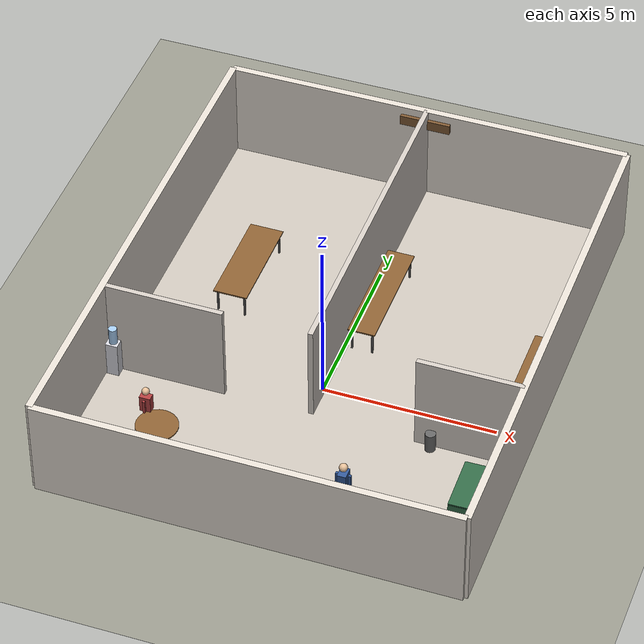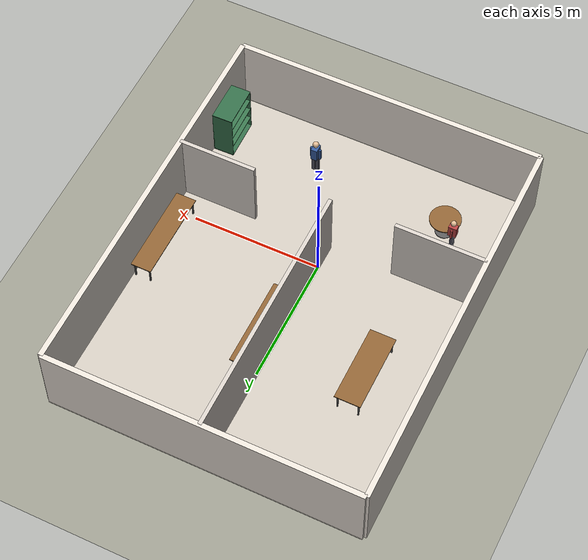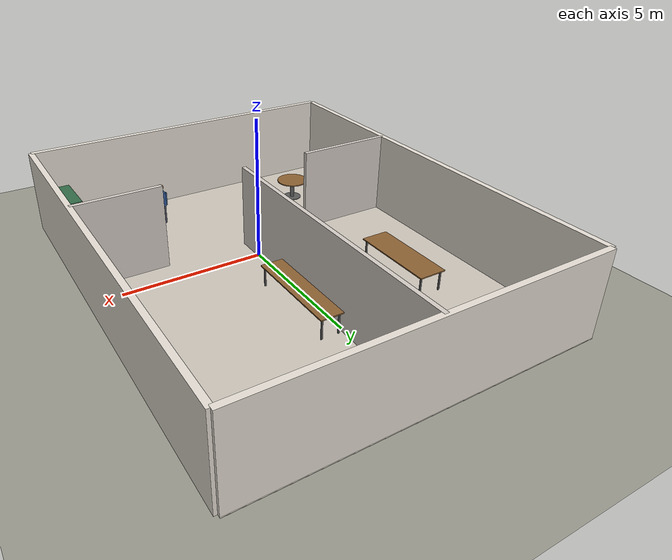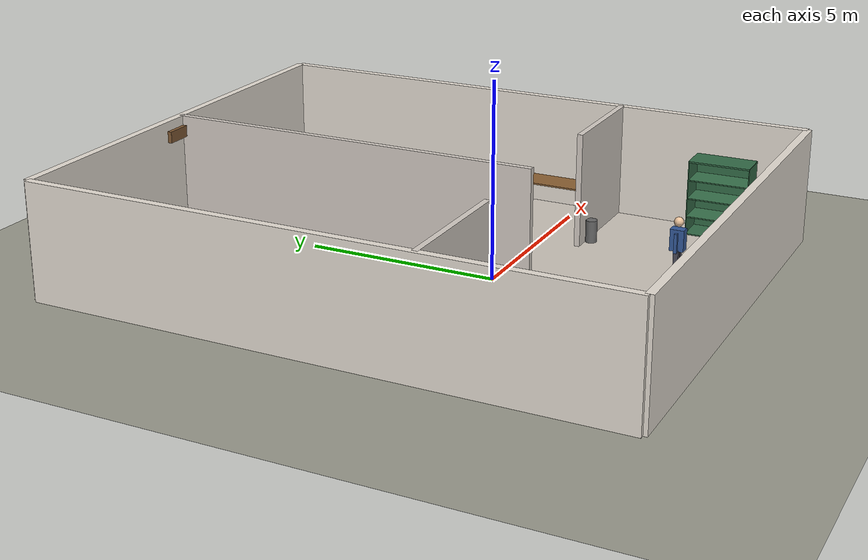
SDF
<?xml version="1.0"?>
<sdf version="1.8">
  <world name="default">
    <physics type="ode">
      <real_time_update_rate>1000.0</real_time_update_rate>
      <max_step_size>0.001</max_step_size>
      <real_time_factor>1</real_time_factor>
      <ode>
        <solver>
          <type>quick</type>
          <iters>150</iters>
          <precon_iters>0</precon_iters>
          <sor>1.400000</sor>
          <use_dynamic_moi_rescaling>1</use_dynamic_moi_rescaling>
        </solver>
        <constraints>
          <cfm>0.00001</cfm>
          <erp>0.2</erp>
          <contact_max_correcting_vel>2000.000000</contact_max_correcting_vel>
          <contact_surface_layer>0.01000</contact_surface_layer>
        </constraints>
      </ode>
    </physics>
    <plugin filename="gz-sim-physics-system" name="gz::sim::systems::Physics"/>
    <plugin filename="gz-sim-user-commands-system" name="gz::sim::systems::UserCommands"/>
    <plugin filename="gz-sim-scene-broadcaster-system" name="gz::sim::systems::SceneBroadcaster"/>
    <plugin filename="gz-sim-sensors-system" name="gz::sim::systems::Sensors">
      <render_engine>ogre2</render_engine>
    </plugin>
    <plugin filename="gz-sim-imu-system" name="gz::sim::systems::Imu"/>

    <!-- Lighting -->
    <light type="directional" name="sun">
      <cast_shadows>true</cast_shadows>
      <pose>0 0 10 0 0 0</pose>
      <diffuse>0.95 0.95 0.9 1</diffuse>
      <specular>0.3 0.3 0.3 1</specular>
      <direction>-0.5 0.3 -0.9</direction>
    </light>

    <!-- Ground Plane -->
    <model name="ground_plane">
      <static>true</static>
      <link name="link">
        <collision name="collision">
          <geometry><plane><normal>0 0 1</normal><size>20 20</size></plane></geometry>
        </collision>
        <visual name="visual">
          <geometry><plane><normal>0 0 1</normal><size>20 20</size></plane></geometry>
          <material>
            <ambient>0.55 0.55 0.5 1</ambient>
            <diffuse>0.6 0.6 0.55 1</diffuse>
          </material>
        </visual>
      </link>
    </model>

    <!-- Floor Tiles -->
    <model name="floor_tiles">
      <static>true</static>
      <pose>0 1.62 0.005 0 0 0</pose>
      <link name="link">
        <visual name="visual">
          <geometry><box><size>12 15 0.01</size></box></geometry>
          <material>
            <ambient>0.75 0.72 0.68 1</ambient>
            <diffuse>0.8 0.77 0.73 1</diffuse>
          </material>
        </visual>
      </link>
    </model>

    <!-- =================== WALLS ===================== -->
    <model name="wall_north">
      <static>true</static>
      <pose>0 9 1.5 0 0 0</pose>
      <link name="link">
        <collision name="collision"><geometry><box><size>12 0.2 3.0</size></box></geometry></collision>
        <visual name="visual">
          <geometry><box><size>12 0.2 3.0</size></box></geometry>
          <material><ambient>0.85 0.82 0.78 1</ambient><diffuse>0.9 0.87 0.83 1</diffuse></material>
        </visual>
      </link>
    </model>

    <model name="wall_south">
      <static>true</static>
      <pose>0 -6 1.5 0 0 0</pose>
      <link name="link">
        <collision name="collision"><geometry><box><size>12 0.2 3.0</size></box></geometry></collision>
        <visual name="visual">
          <geometry><box><size>12 0.2 3.0</size></box></geometry>
          <material><ambient>0.85 0.82 0.78 1</ambient><diffuse>0.9 0.87 0.83 1</diffuse></material>
        </visual>
      </link>
    </model>

    <model name="wall_west">
      <static>true</static>
      <pose>-6 1.5 1.5 0 0 0</pose>
      <link name="link">
        <collision name="collision"><geometry><box><size>0.2 15 3.0</size></box></geometry></collision>
        <visual name="visual">
          <geometry><box><size>0.2 15 3.0</size></box></geometry>
          <material><ambient>0.85 0.82 0.78 1</ambient><diffuse>0.9 0.87 0.83 1</diffuse></material>
        </visual>
      </link>
    </model>

    <model name="wall_east">
      <static>true</static>
      <pose>6 1.5 1.5 0 0 0</pose>
      <link name="link">
        <collision name="collision"><geometry><box><size>0.2 15 3.0</size></box></geometry></collision>
        <visual name="visual">
          <geometry><box><size>0.2 15 3.0</size></box></geometry>
          <material><ambient>0.85 0.82 0.78 1</ambient><diffuse>0.9 0.87 0.83 1</diffuse></material>
        </visual>
      </link>
    </model>

    <!-- Interior wall - Vertical partition -->
    <model name="wall_partition_vertical">
      <static>true</static>
      <pose>0 4 1.5 0 0 0</pose>
      <link name="link">
        <collision name="collision"><geometry><box><size>0.15 10.0 3.0</size></box></geometry></collision>
        <visual name="visual">
          <geometry><box><size>0.15 10.0 3.0</size></box></geometry>
          <material><ambient>0.78 0.75 0.72 1</ambient><diffuse>0.83 0.80 0.77 1</diffuse></material>
        </visual>
      </link>
    </model>

    <!-- Interior wall - Horizontal left -->
    <model name="wall_horizontal_left">
      <static>true</static>
      <pose>-4.25 -1 1.5 0 0 0</pose>
      <link name="link">
        <collision name="collision"><geometry><box><size>3.5 0.15 3.0</size></box></geometry></collision>
        <visual name="visual">
          <geometry><box><size>3.5 0.15 3.0</size></box></geometry>
          <material><ambient>0.78 0.75 0.72 1</ambient><diffuse>0.83 0.80 0.77 1</diffuse></material>
        </visual>
      </link>
    </model>

    <!-- Interior wall - Horizontal right -->
    <model name="wall_horizontal_right">
      <static>true</static>
      <pose>4.5 -1 1.5 0 0 0</pose>
      <link name="link">
        <collision name="collision"><geometry><box><size>3.0 0.15 3.0</size></box></geometry></collision>
        <visual name="visual">
          <geometry><box><size>3.0 0.15 3.0</size></box></geometry>
          <material><ambient>0.78 0.75 0.72 1</ambient><diffuse>0.83 0.80 0.77 1</diffuse></material>
        </visual>
      </link>
    </model>

    <!-- Door frame -->
    <model name="door_frame_left">
      <static>true</static>
      <pose>0 8.9 2.6 0 0 0</pose>
      <link name="link">
        <visual name="visual">
          <geometry><box><size>1.5 0.22 0.3</size></box></geometry>
          <material><ambient>0.45 0.3 0.15 1</ambient><diffuse>0.5 0.35 0.2 1</diffuse></material>
        </visual>
      </link>
    </model>

    <!-- =================== FURNITURE ===================== -->

    <!-- Table 1 (upper left) -->
    <model name="table_1">
      <static>true</static>
      <pose>-3.5 3.5 0 0 0 -1.5708</pose>
      <link name="link">
        <visual name="top"><pose>0 0 0.75 0 0 0</pose>
          <geometry><box><size>3.0 1.0 0.04</size></box></geometry>
          <material><ambient>0.45 0.3 0.15 1</ambient><diffuse>0.55 0.38 0.2 1</diffuse></material>
        </visual>
        <collision name="top_col"><pose>0 0 0.75 0 0 0</pose><geometry><box><size>3.0 1.0 0.04</size></box></geometry></collision>
        <visual name="leg1"><pose>-1.4 -0.4 0.375 0 0 0</pose><geometry><box><size>0.05 0.05 0.75</size></box></geometry>
          <material><ambient>0.3 0.3 0.3 1</ambient><diffuse>0.35 0.35 0.35 1</diffuse></material></visual>
        <collision name="leg1_col"><pose>-1.4 -0.4 0.375 0 0 0</pose><geometry><box><size>0.05 0.05 0.75</size></box></geometry></collision>
        <visual name="leg2"><pose>1.4 -0.4 0.375 0 0 0</pose><geometry><box><size>0.05 0.05 0.75</size></box></geometry>
          <material><ambient>0.3 0.3 0.3 1</ambient><diffuse>0.35 0.35 0.35 1</diffuse></material></visual>
        <collision name="leg2_col"><pose>1.4 -0.4 0.375 0 0 0</pose><geometry><box><size>0.05 0.05 0.75</size></box></geometry></collision>
        <visual name="leg3"><pose>-1.4 0.4 0.375 0 0 0</pose><geometry><box><size>0.05 0.05 0.75</size></box></geometry>
          <material><ambient>0.3 0.3 0.3 1</ambient><diffuse>0.35 0.35 0.35 1</diffuse></material></visual>
        <collision name="leg3_col"><pose>-1.4 0.4 0.375 0 0 0</pose><geometry><box><size>0.05 0.05 0.75</size></box></geometry></collision>
        <visual name="leg4"><pose>1.4 0.4 0.375 0 0 0</pose><geometry><box><size>0.05 0.05 0.75</size></box></geometry>
          <material><ambient>0.3 0.3 0.3 1</ambient><diffuse>0.35 0.35 0.35 1</diffuse></material></visual>
        <collision name="leg4_col"><pose>1.4 0.4 0.375 0 0 0</pose><geometry><box><size>0.05 0.05 0.75</size></box></geometry></collision>
      </link>
    </model>

    <!-- Table 2 (right side) -->
    <model name="table_2">
      <static>true</static>
      <pose>5.5 1.5 0 0 0 1.57</pose>
      <link name="link">
        <visual name="top"><pose>0 0 0.75 0 0 0</pose>
          <geometry><box><size>3.5 0.8 0.04</size></box></geometry>
          <material><ambient>0.45 0.3 0.15 1</ambient><diffuse>0.55 0.38 0.2 1</diffuse></material>
        </visual>
        <collision name="top_col"><pose>0 0 0.75 0 0 0</pose><geometry><box><size>3.5 0.8 0.04</size></box></geometry></collision>
        <visual name="leg1"><pose>-1.65 -0.3 0.375 0 0 0</pose><geometry><box><size>0.05 0.05 0.75</size></box></geometry>
          <material><ambient>0.3 0.3 0.3 1</ambient><diffuse>0.35 0.35 0.35 1</diffuse></material></visual>
        <visual name="leg2"><pose>1.65 -0.3 0.375 0 0 0</pose><geometry><box><size>0.05 0.05 0.75</size></box></geometry>
          <material><ambient>0.3 0.3 0.3 1</ambient><diffuse>0.35 0.35 0.35 1</diffuse></material></visual>
        <visual name="leg3"><pose>-1.65 0.3 0.375 0 0 0</pose><geometry><box><size>0.05 0.05 0.75</size></box></geometry>
          <material><ambient>0.3 0.3 0.3 1</ambient><diffuse>0.35 0.35 0.35 1</diffuse></material></visual>
        <visual name="leg4"><pose>1.65 0.3 0.375 0 0 0</pose><geometry><box><size>0.05 0.05 0.75</size></box></geometry>
          <material><ambient>0.3 0.3 0.3 1</ambient><diffuse>0.35 0.35 0.35 1</diffuse></material></visual>
      </link>
    </model>

    <!-- Table 3 (center) -->
    <model name="table_3">
      <static>true</static>
      <pose>0.5 3.5 0 0 0 1.57</pose>
      <link name="link">
        <visual name="top"><pose>0 0 0.75 0 0 0</pose>
          <geometry><box><size>3.5 0.8 0.04</size></box></geometry>
          <material><ambient>0.45 0.3 0.15 1</ambient><diffuse>0.55 0.38 0.2 1</diffuse></material>
        </visual>
        <collision name="top_col"><pose>0 0 0.75 0 0 0</pose><geometry><box><size>3.5 0.8 0.04</size></box></geometry></collision>
        <visual name="leg1"><pose>-1.65 -0.3 0.375 0 0 0</pose><geometry><box><size>0.05 0.05 0.75</size></box></geometry>
          <material><ambient>0.3 0.3 0.3 1</ambient><diffuse>0.35 0.35 0.35 1</diffuse></material></visual>
        <visual name="leg2"><pose>1.65 -0.3 0.375 0 0 0</pose><geometry><box><size>0.05 0.05 0.75</size></box></geometry>
          <material><ambient>0.3 0.3 0.3 1</ambient><diffuse>0.35 0.35 0.35 1</diffuse></material></visual>
        <visual name="leg3"><pose>-1.65 0.3 0.375 0 0 0</pose><geometry><box><size>0.05 0.05 0.75</size></box></geometry>
          <material><ambient>0.3 0.3 0.3 1</ambient><diffuse>0.35 0.35 0.35 1</diffuse></material></visual>
        <visual name="leg4"><pose>1.65 0.3 0.375 0 0 0</pose><geometry><box><size>0.05 0.05 0.75</size></box></geometry>
          <material><ambient>0.3 0.3 0.3 1</ambient><diffuse>0.35 0.35 0.35 1</diffuse></material></visual>
      </link>
    </model>

    <!-- Round table (lower left) -->
    <model name="round_table">
      <static>true</static>
      <pose>-3.5 -3.5 0 0 0 0</pose>
      <link name="link">
        <visual name="top"><pose>0 0 0.75 0 0 0</pose>
          <geometry><cylinder><radius>0.6</radius><length>0.04</length></cylinder></geometry>
          <material><ambient>0.45 0.3 0.15 1</ambient><diffuse>0.55 0.38 0.2 1</diffuse></material>
        </visual>
        <collision name="top_col"><pose>0 0 0.75 0 0 0</pose>
          <geometry><cylinder><radius>0.6</radius><length>0.04</length></cylinder></geometry>
        </collision>
        <visual name="pedestal"><pose>0 0 0.375 0 0 0</pose>
          <geometry><cylinder><radius>0.08</radius><length>0.75</length></cylinder></geometry>
          <material><ambient>0.3 0.3 0.3 1</ambient><diffuse>0.35 0.35 0.35 1</diffuse></material>
        </visual>
        <collision name="pedestal_col"><pose>0 0 0.375 0 0 0</pose>
          <geometry><cylinder><radius>0.08</radius><length>0.75</length></cylinder></geometry>
        </collision>
        <visual name="base"><pose>0 0 0.02 0 0 0</pose>
          <geometry><cylinder><radius>0.35</radius><length>0.04</length></cylinder></geometry>
          <material><ambient>0.3 0.3 0.3 1</ambient><diffuse>0.35 0.35 0.35 1</diffuse></material>
        </visual>
      </link>
    </model>

    <!-- Shelf cabinet (lower right) -->
    <model name="shelf_cabinet">
      <static>true</static>
      <pose>5.5 -4.0 0 0 0 -1.55</pose>
      <link name="link">
        <visual name="back_panel"><pose>0 0.39 1.0 0 0 0</pose>
          <geometry><box><size>1.6 0.02 2.0</size></box></geometry>
          <material><ambient>0.15 0.35 0.2 1</ambient><diffuse>0.2 0.42 0.28 1</diffuse></material>
        </visual>
        <collision name="back_col"><pose>0 0.39 1.0 0 0 0</pose><geometry><box><size>1.6 0.02 2.0</size></box></geometry></collision>
        <visual name="left_side"><pose>-0.79 0 1.0 0 0 0</pose>
          <geometry><box><size>0.02 0.8 2.0</size></box></geometry>
          <material><ambient>0.15 0.35 0.2 1</ambient><diffuse>0.2 0.42 0.28 1</diffuse></material>
        </visual>
        <collision name="left_col"><pose>-0.79 0 1.0 0 0 0</pose><geometry><box><size>0.02 0.8 2.0</size></box></geometry></collision>
        <visual name="right_side"><pose>0.79 0 1.0 0 0 0</pose>
          <geometry><box><size>0.02 0.8 2.0</size></box></geometry>
          <material><ambient>0.15 0.35 0.2 1</ambient><diffuse>0.2 0.42 0.28 1</diffuse></material>
        </visual>
        <collision name="right_col"><pose>0.79 0 1.0 0 0 0</pose><geometry><box><size>0.02 0.8 2.0</size></box></geometry></collision>
        <visual name="shelf_bottom"><pose>0 0 0.02 0 0 0</pose>
          <geometry><box><size>1.6 0.8 0.04</size></box></geometry>
          <material><ambient>0.15 0.35 0.2 1</ambient><diffuse>0.2 0.42 0.28 1</diffuse></material>
        </visual>
        <visual name="shelf_1"><pose>0 0 0.5 0 0 0</pose>
          <geometry><box><size>1.56 0.78 0.03</size></box></geometry>
          <material><ambient>0.18 0.38 0.23 1</ambient><diffuse>0.22 0.45 0.3 1</diffuse></material>
        </visual>
        <collision name="s1_col"><pose>0 0 0.5 0 0 0</pose><geometry><box><size>1.56 0.78 0.03</size></box></geometry></collision>
        <visual name="shelf_2"><pose>0 0 1.0 0 0 0</pose>
          <geometry><box><size>1.56 0.78 0.03</size></box></geometry>
          <material><ambient>0.18 0.38 0.23 1</ambient><diffuse>0.22 0.45 0.3 1</diffuse></material>
        </visual>
        <collision name="s2_col"><pose>0 0 1.0 0 0 0</pose><geometry><box><size>1.56 0.78 0.03</size></box></geometry></collision>
        <visual name="shelf_3"><pose>0 0 1.5 0 0 0</pose>
          <geometry><box><size>1.56 0.78 0.03</size></box></geometry>
          <material><ambient>0.18 0.38 0.23 1</ambient><diffuse>0.22 0.45 0.3 1</diffuse></material>
        </visual>
        <collision name="s3_col"><pose>0 0 1.5 0 0 0</pose><geometry><box><size>1.56 0.78 0.03</size></box></geometry></collision>
        <visual name="shelf_top"><pose>0 0 2.0 0 0 0</pose>
          <geometry><box><size>1.6 0.8 0.04</size></box></geometry>
          <material><ambient>0.15 0.35 0.2 1</ambient><diffuse>0.2 0.42 0.28 1</diffuse></material>
        </visual>
      </link>
    </model>

    <!-- Trash bin -->
    <model name="trash_bin">
      <static>true</static>
      <pose>3.5 -1.2 0 0 0 0</pose>
      <link name="link">
        <visual name="body"><pose>0 0 0.3 0 0 0</pose>
          <geometry><cylinder><radius>0.15</radius><length>0.6</length></cylinder></geometry>
          <material><ambient>0.3 0.3 0.3 1</ambient><diffuse>0.4 0.4 0.4 1</diffuse></material>
        </visual>
        <collision name="col"><pose>0 0 0.3 0 0 0</pose>
          <geometry><cylinder><radius>0.15</radius><length>0.6</length></cylinder></geometry>
        </collision>
      </link>
    </model>

    <!-- Water dispenser -->
    <model name="water_dispenser">
      <static>true</static>
      <pose>-5.7 -1.2 0 0 0 0</pose>
      <link name="link">
        <visual name="body"><pose>0 0 0.55 0 0 0</pose>
          <geometry><box><size>0.35 0.35 1.1</size></box></geometry>
          <material><ambient>0.8 0.8 0.82 1</ambient><diffuse>0.85 0.85 0.88 1</diffuse></material>
        </visual>
        <collision name="col"><pose>0 0 0.55 0 0 0</pose>
          <geometry><box><size>0.35 0.35 1.1</size></box></geometry>
        </collision>
        <visual name="bottle"><pose>0 0 1.35 0 0 0</pose>
          <geometry><cylinder><radius>0.12</radius><length>0.5</length></cylinder></geometry>
          <material><ambient>0.6 0.75 0.9 1</ambient><diffuse>0.65 0.8 0.95 1</diffuse></material>
        </visual>
      </link>
    </model>

    <!-- Walking person 1 -->
    <model name="orang_jalan_1">
      <static>false</static>
      <self_collide>false</self_collide>
      <pose>2 -4 0 0 0 1.5708</pose>
      <link name="body">
        <inertial>
          <pose>0 0 0.4 0 0 0</pose>
          <mass>1.0</mass>
          <inertia><ixx>0.5</ixx><ixy>0</ixy><ixz>0</ixz><iyy>0.5</iyy><iyz>0</iyz><izz>0.16</izz></inertia>
        </inertial>
        <collision name="base_col"><pose>0 0 0.85 0 0 0</pose>
          <geometry><cylinder><radius>0.25</radius><length>1.7</length></cylinder></geometry>
          <surface><friction><ode><mu>0.1</mu><mu2>0.1</mu2></ode></friction></surface>
        </collision>
        <visual name="torso"><pose>0 0 1.05 0 0 0</pose>
          <geometry><box><size>0.35 0.25 0.55</size></box></geometry>
          <material><ambient>0.15 0.3 0.55 1</ambient><diffuse>0.2 0.35 0.6 1</diffuse></material>
        </visual>
        <visual name="head"><pose>0 0 1.5 0 0 0</pose>
          <geometry><sphere><radius>0.12</radius></sphere></geometry>
          <material><ambient>0.85 0.7 0.55 1</ambient><diffuse>0.9 0.75 0.6 1</diffuse></material>
        </visual>
        <visual name="arm_left"><pose>0 0.18 1.0 0 0 0</pose>
          <geometry><box><size>0.08 0.08 0.5</size></box></geometry>
          <material><ambient>0.15 0.3 0.55 1</ambient><diffuse>0.2 0.35 0.6 1</diffuse></material>
        </visual>
        <visual name="arm_right"><pose>0 -0.18 1.0 0 0 0</pose>
          <geometry><box><size>0.08 0.08 0.5</size></box></geometry>
          <material><ambient>0.15 0.3 0.55 1</ambient><diffuse>0.2 0.35 0.6 1</diffuse></material>
        </visual>
        <visual name="leg_left"><pose>0 0.08 0.4 0 0 0</pose>
          <geometry><box><size>0.12 0.12 0.8</size></box></geometry>
          <material><ambient>0.25 0.25 0.3 1</ambient><diffuse>0.3 0.3 0.35 1</diffuse></material>
        </visual>
        <visual name="leg_right"><pose>0 -0.08 0.4 0 0 0</pose>
          <geometry><box><size>0.12 0.12 0.8</size></box></geometry>
          <material><ambient>0.25 0.25 0.3 1</ambient><diffuse>0.3 0.3 0.35 1</diffuse></material>
        </visual>
      </link>
      <plugin filename="gz-sim-trajectory-follower-system" name="gz::sim::systems::TrajectoryFollower">
        <link_name>body</link_name><loop>true</loop><force>10</force><torque>10</torque>
        <line><direction>0</direction><length>11</length></line>
      </plugin>
    </model>

    <!-- Walking person 2 -->
    <model name="orang_jalan_2">
      <static>false</static>
      <self_collide>false</self_collide>
      <pose>-4 -3 0 0 0 0</pose>
      <link name="body">
        <inertial>
          <pose>0 0 0.4 0 0 0</pose>
          <mass>1.0</mass>
          <inertia><ixx>0.5</ixx><ixy>0</ixy><ixz>0</ixz><iyy>0.5</iyy><iyz>0</iyz><izz>0.16</izz></inertia>
        </inertial>
        <collision name="base_col"><pose>0 0 0.8 0 0 0</pose>
          <geometry><cylinder><radius>0.22</radius><length>1.6</length></cylinder></geometry>
          <surface><friction><ode><mu>0.1</mu><mu2>0.1</mu2></ode></friction></surface>
        </collision>
        <visual name="torso"><pose>0 0 1.0 0 0 0</pose>
          <geometry><box><size>0.32 0.22 0.50</size></box></geometry>
          <material><ambient>0.6 0.2 0.2 1</ambient><diffuse>0.7 0.25 0.25 1</diffuse></material>
        </visual>
        <visual name="head"><pose>0 0 1.42 0 0 0</pose>
          <geometry><sphere><radius>0.11</radius></sphere></geometry>
          <material><ambient>0.85 0.7 0.55 1</ambient><diffuse>0.9 0.75 0.6 1</diffuse></material>
        </visual>
        <visual name="arm_left"><pose>0 0.16 0.95 0 0 0</pose>
          <geometry><box><size>0.07 0.07 0.45</size></box></geometry>
          <material><ambient>0.6 0.2 0.2 1</ambient><diffuse>0.7 0.25 0.25 1</diffuse></material>
        </visual>
        <visual name="arm_right"><pose>0 -0.16 0.95 0 0 0</pose>
          <geometry><box><size>0.07 0.07 0.45</size></box></geometry>
          <material><ambient>0.6 0.2 0.2 1</ambient><diffuse>0.7 0.25 0.25 1</diffuse></material>
        </visual>
        <visual name="leg_left"><pose>0 0.07 0.37 0 0 0</pose>
          <geometry><box><size>0.11 0.11 0.74</size></box></geometry>
          <material><ambient>0.2 0.2 0.25 1</ambient><diffuse>0.25 0.25 0.3 1</diffuse></material>
        </visual>
        <visual name="leg_right"><pose>0 -0.07 0.37 0 0 0</pose>
          <geometry><box><size>0.11 0.11 0.74</size></box></geometry>
          <material><ambient>0.2 0.2 0.25 1</ambient><diffuse>0.25 0.25 0.3 1</diffuse></material>
        </visual>
      </link>
      <plugin filename="gz-sim-trajectory-follower-system" name="gz::sim::systems::TrajectoryFollower">
        <link_name>body</link_name><loop>true</loop><force>10</force><torque>10</torque>
        <line><direction>0</direction><length>8</length></line>
      </plugin>
    </model>

  </world>
</sdf>
